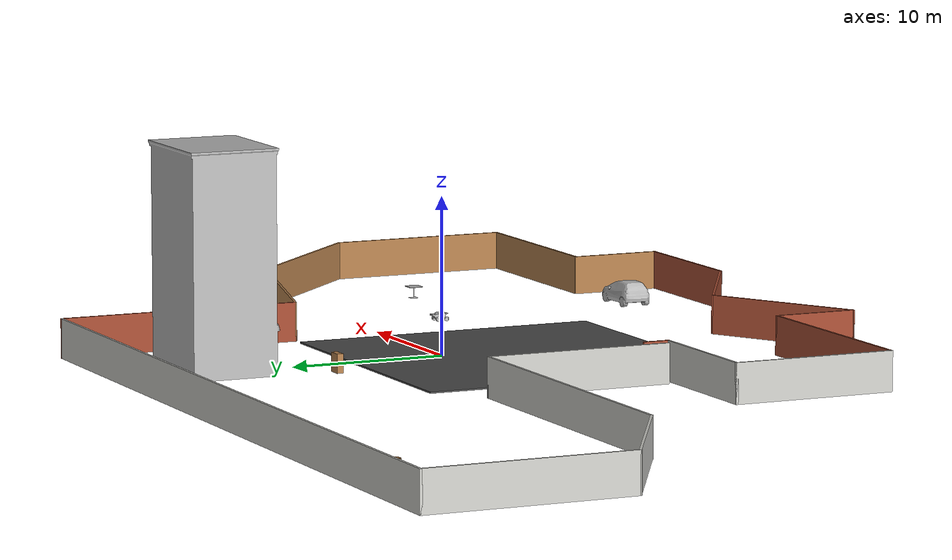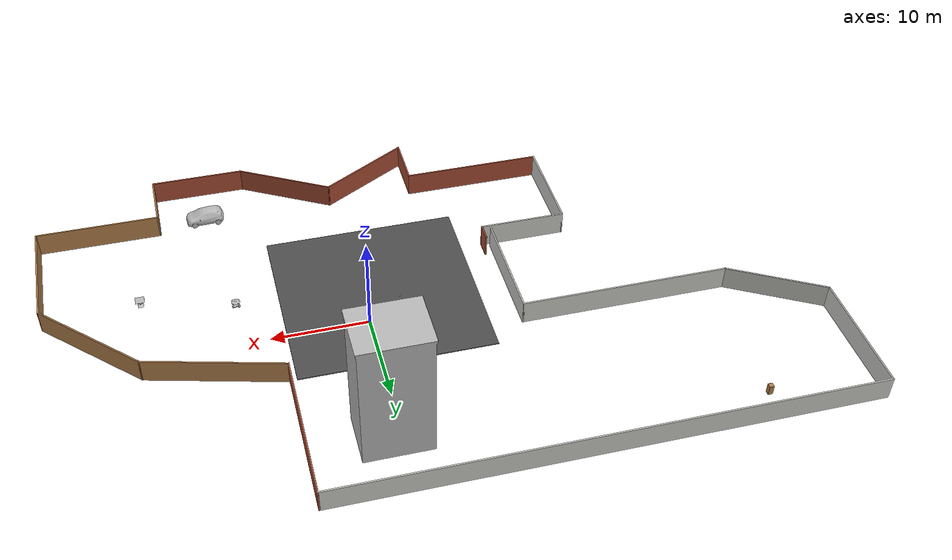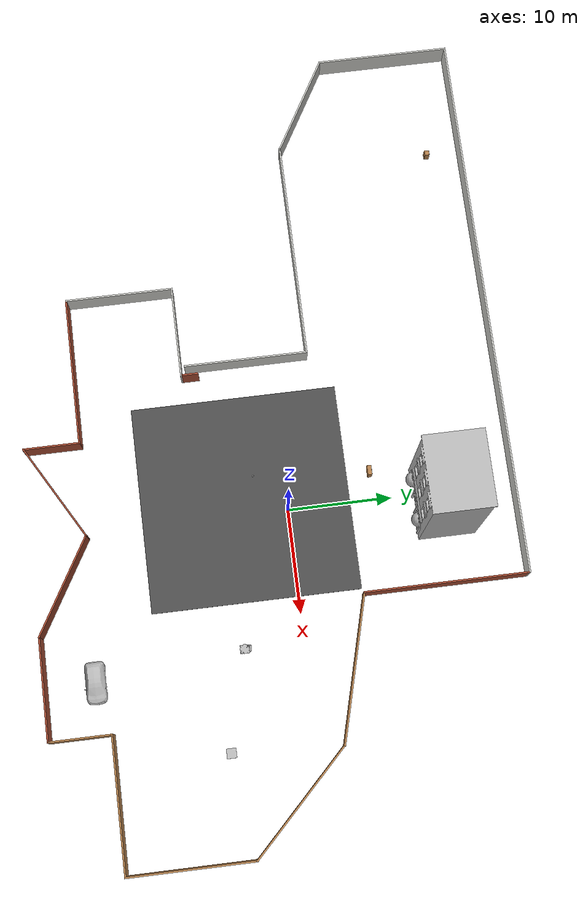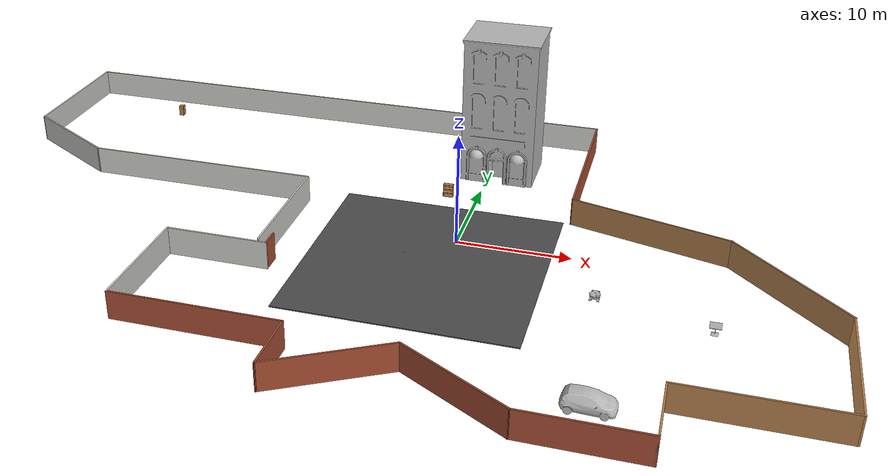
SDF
<?xml version='1.0'?>
<sdf version='1.6'>
  <model name='model1'>
    <model name='Untitled'>
      <pose frame=''>-6.69838 -1.37299 0 0 -0 0</pose>
      <link name='Wall_0'>
        <collision name='Wall_0_Collision'>
          <geometry>
            <box>
              <size>1.75 0.15 2.5</size>
            </box>
          </geometry>
          <pose frame=''>0 0 1.25 0 -0 0</pose>
        </collision>
        <visual name='Wall_0_Visual'>
          <pose frame=''>0 0 1.25 0 -0 0</pose>
          <geometry>
            <box>
              <size>1.75 0.15 2.5</size>
            </box>
          </geometry>
          <material>
            <script>
              <uri>file://media/materials/scripts/gazebo.material</uri>
              <name>Gazebo/Bricks</name>
            </script>
            <ambient>1 1 1 1</ambient>
          </material>
          <meta>
            <layer>0</layer>
          </meta>
        </visual>
        <pose frame=''>-7.2256 -6.50411 0 0 -0 -1.5708</pose>
      </link>
      <link name='Wall_1'>
        <collision name='Wall_1_Collision'>
          <geometry>
            <box>
              <size>9 0.15 2.5</size>
            </box>
          </geometry>
          <pose frame=''>0 0 1.25 0 -0 0</pose>
        </collision>
        <visual name='Wall_1_Visual'>
          <pose frame=''>0 0 1.25 0 -0 0</pose>
          <geometry>
            <box>
              <size>9 0.15 2.5</size>
            </box>
          </geometry>
          <material>
            <script>
              <uri>file://media/materials/scripts/gazebo.material</uri>
              <name>Gazebo/CeilingTiled</name>
            </script>
            <ambient>1 0.764706 0.305882 1</ambient>
          </material>
          <meta>
            <layer>0</layer>
          </meta>
        </visual>
        <pose frame=''>-11.6506 -7.30411 0 0 -0 3.14159</pose>
      </link>
      <link name='Wall_10'>
        <collision name='Wall_10_Collision'>
          <geometry>
            <box>
              <size>12 0.15 2.5</size>
            </box>
          </geometry>
          <pose frame=''>0 0 1.25 0 -0 0</pose>
        </collision>
        <visual name='Wall_10_Visual'>
          <pose frame=''>0 0 1.25 0 -0 0</pose>
          <geometry>
            <box>
              <size>12 0.15 2.5</size>
            </box>
          </geometry>
          <material>
            <script>
              <uri>file://media/materials/scripts/gazebo.material</uri>
              <name>Gazebo/Wood</name>
            </script>
            <ambient>1 1 1 1</ambient>
          </material>
          <meta>
            <layer>0</layer>
          </meta>
        </visual>
        <pose frame=''>38.4011 -11.2291 0 0 -0 1.5708</pose>
      </link>
      <link name='Wall_11'>
        <collision name='Wall_11_Collision'>
          <geometry>
            <box>
              <size>13 0.15 2.5</size>
            </box>
          </geometry>
          <pose frame=''>0 0 1.25 0 -0 0</pose>
        </collision>
        <visual name='Wall_11_Visual'>
          <pose frame=''>0 0 1.25 0 -0 0</pose>
          <geometry>
            <box>
              <size>13 0.15 2.5</size>
            </box>
          </geometry>
          <material>
            <script>
              <uri>file://media/materials/scripts/gazebo.material</uri>
              <name>Gazebo/Wood</name>
            </script>
            <ambient>1 1 1 1</ambient>
          </material>
          <meta>
            <layer>0</layer>
          </meta>
        </visual>
        <pose frame=''>33.858 -0.760948 0 0 -0 2.35619</pose>
      </link>
      <link name='Wall_12'>
        <collision name='Wall_12_Collision'>
          <geometry>
            <box>
              <size>14.25 0.15 2.5</size>
            </box>
          </geometry>
          <pose frame=''>0 0 1.25 0 -0 0</pose>
        </collision>
        <visual name='Wall_12_Visual'>
          <pose frame=''>0 0 1.25 0 -0 0</pose>
          <geometry>
            <box>
              <size>14.25 0.15 2.5</size>
            </box>
          </geometry>
          <material>
            <script>
              <uri>file://media/materials/scripts/gazebo.material</uri>
              <name>Gazebo/Wood</name>
            </script>
            <ambient>1 1 1 1</ambient>
          </material>
          <meta>
            <layer>0</layer>
          </meta>
        </visual>
        <pose frame=''>22.505 5.60689 0 0 -0 2.87979</pose>
      </link>
      <link name='Wall_13'>
        <collision name='Wall_13_Collision'>
          <geometry>
            <box>
              <size>15.75 0.15 2.5</size>
            </box>
          </geometry>
          <pose frame=''>0 0 1.25 0 -0 0</pose>
        </collision>
        <visual name='Wall_13_Visual'>
          <pose frame=''>0 0 1.25 0 -0 0</pose>
          <geometry>
            <box>
              <size>15.75 0.15 2.5</size>
            </box>
          </geometry>
          <material>
            <script>
              <uri>file://media/materials/scripts/gazebo.material</uri>
              <name>Gazebo/Bricks</name>
            </script>
            <ambient>1 1 1 1</ambient>
          </material>
          <meta>
            <layer>0</layer>
          </meta>
        </visual>
        <pose frame=''>15.6953 15.2316 0 0 -0 1.5708</pose>
      </link>
      <link name='Wall_14'>
        <collision name='Wall_14_Collision'>
          <geometry>
            <box>
              <size>54.25 0.15 2.5</size>
            </box>
          </geometry>
          <pose frame=''>0 0 1.25 0 -0 0</pose>
        </collision>
        <visual name='Wall_14_Visual'>
          <pose frame=''>0 0 1.25 0 -0 0</pose>
          <geometry>
            <box>
              <size>54.25 0.15 2.5</size>
            </box>
          </geometry>
          <material>
            <script>
              <uri>file://media/materials/scripts/gazebo.material</uri>
              <name>Gazebo/CeilingTiled</name>
            </script>
            <ambient>1 0.764706 0.305882 1</ambient>
          </material>
          <meta>
            <layer>0</layer>
          </meta>
        </visual>
        <pose frame=''>-11.3547 23.0316 0 0 -0 3.14159</pose>
      </link>
      <link name='Wall_15'>
        <collision name='Wall_15_Collision'>
          <geometry>
            <box>
              <size>13 0.15 2.5</size>
            </box>
          </geometry>
          <pose frame=''>0 0 1.25 0 -0 0</pose>
        </collision>
        <visual name='Wall_15_Visual'>
          <pose frame=''>0 0 1.25 0 -0 0</pose>
          <geometry>
            <box>
              <size>13 0.15 2.5</size>
            </box>
          </geometry>
          <material>
            <script>
              <uri>file://media/materials/scripts/gazebo.material</uri>
              <name>Gazebo/CeilingTiled</name>
            </script>
            <ambient>1 0.764706 0.305882 1</ambient>
          </material>
          <meta>
            <layer>0</layer>
          </meta>
        </visual>
        <pose frame=''>-38.4047 16.6066 0 0 -0 -1.5708</pose>
      </link>
      <link name='Wall_16'>
        <collision name='Wall_16_Collision'>
          <geometry>
            <box>
              <size>10.5 0.15 2.5</size>
            </box>
          </geometry>
          <pose frame=''>0 0 1.25 0 -0 0</pose>
        </collision>
        <visual name='Wall_16_Visual'>
          <pose frame=''>0 0 1.25 0 -0 0</pose>
          <geometry>
            <box>
              <size>10.5 0.15 2.5</size>
            </box>
          </geometry>
          <material>
            <script>
              <uri>file://media/materials/scripts/gazebo.material</uri>
              <name>Gazebo/CeilingTiled</name>
            </script>
            <ambient>1 0.764706 0.305882 1</ambient>
          </material>
          <meta>
            <layer>0</layer>
          </meta>
        </visual>
        <pose frame=''>-33.9231 7.59406 0 0 -0 -0.523599</pose>
      </link>
      <link name='Wall_17'>
        <collision name='Wall_17_Collision'>
          <geometry>
            <box>
              <size>21.5 0.15 2.5</size>
            </box>
          </geometry>
          <pose frame=''>0 0 1.25 0 -0 0</pose>
        </collision>
        <visual name='Wall_17_Visual'>
          <pose frame=''>0 0 1.25 0 -0 0</pose>
          <geometry>
            <box>
              <size>21.5 0.15 2.5</size>
            </box>
          </geometry>
          <material>
            <script>
              <uri>file://media/materials/scripts/gazebo.material</uri>
              <name>Gazebo/CeilingTiled</name>
            </script>
            <ambient>1 0.764706 0.305882 1</ambient>
          </material>
          <meta>
            <layer>0</layer>
          </meta>
        </visual>
        <pose frame=''>-18.7664 5.00656 0 0 -0 0</pose>
      </link>
      <link name='Wall_18'>
        <collision name='Wall_18_Collision'>
          <geometry>
            <box>
              <size>12 0.15 2.5</size>
            </box>
          </geometry>
          <pose frame=''>0 0 1.25 0 -0 0</pose>
        </collision>
        <visual name='Wall_18_Visual'>
          <pose frame=''>0 0 1.25 0 -0 0</pose>
          <geometry>
            <box>
              <size>12 0.15 2.5</size>
            </box>
          </geometry>
          <material>
            <script>
              <uri>file://media/materials/scripts/gazebo.material</uri>
              <name>Gazebo/CeilingTiled</name>
            </script>
            <ambient>1 0.764706 0.305882 1</ambient>
          </material>
          <meta>
            <layer>0</layer>
          </meta>
        </visual>
        <pose frame=''>-8.09139 -0.918439 0 0 -0 -1.5708</pose>
      </link>
      <link name='Wall_2'>
        <collision name='Wall_2_Collision'>
          <geometry>
            <box>
              <size>10.5 0.15 2.5</size>
            </box>
          </geometry>
          <pose frame=''>0 0 1.25 0 -0 0</pose>
        </collision>
        <visual name='Wall_2_Visual'>
          <pose frame=''>0 0 1.25 0 -0 0</pose>
          <geometry>
            <box>
              <size>10.5 0.15 2.5</size>
            </box>
          </geometry>
          <material>
            <script>
              <uri>file://media/materials/scripts/gazebo.material</uri>
              <name>Gazebo/CeilingTiled</name>
            </script>
            <ambient>1 0.764706 0.305882 1</ambient>
          </material>
          <meta>
            <layer>0</layer>
          </meta>
        </visual>
        <pose frame=''>-16.0756 -12.4791 0 0 -0 -1.5708</pose>
      </link>
      <link name='Wall_3'>
        <collision name='Wall_3_Collision'>
          <geometry>
            <box>
              <size>14.5 0.15 2.5</size>
            </box>
          </geometry>
          <pose frame=''>0 0 1.25 0 -0 0</pose>
        </collision>
        <visual name='Wall_3_Visual'>
          <pose frame=''>0 0 1.25 0 -0 0</pose>
          <geometry>
            <box>
              <size>14.5 0.15 2.5</size>
            </box>
          </geometry>
          <material>
            <script>
              <uri>file://media/materials/scripts/gazebo.material</uri>
              <name>Gazebo/Bricks</name>
            </script>
            <ambient>1 1 1 1</ambient>
          </material>
          <meta>
            <layer>0</layer>
          </meta>
        </visual>
        <pose frame=''>-8.9006 -17.6541 0 0 -0 0</pose>
      </link>
      <link name='Wall_4'>
        <collision name='Wall_4_Collision'>
          <geometry>
            <box>
              <size>5.5 0.15 2.5</size>
            </box>
          </geometry>
          <pose frame=''>0 0 1.25 0 -0 0</pose>
        </collision>
        <visual name='Wall_4_Visual'>
          <pose frame=''>0 0 1.25 0 -0 0</pose>
          <geometry>
            <box>
              <size>5.5 0.15 2.5</size>
            </box>
          </geometry>
          <material>
            <script>
              <uri>file://media/materials/scripts/gazebo.material</uri>
              <name>Gazebo/Bricks</name>
            </script>
            <ambient>1 1 1 1</ambient>
          </material>
          <meta>
            <layer>0</layer>
          </meta>
        </visual>
        <pose frame=''>-1.7256 -20.3291 0 0 -0 -1.5708</pose>
      </link>
      <link name='Wall_5'>
        <collision name='Wall_5_Collision'>
          <geometry>
            <box>
              <size>10.5 0.15 2.5</size>
            </box>
          </geometry>
          <pose frame=''>0 0 1.25 0 -0 0</pose>
        </collision>
        <visual name='Wall_5_Visual'>
          <pose frame=''>0 0 1.25 0 -0 0</pose>
          <geometry>
            <box>
              <size>10.5 0.15 2.5</size>
            </box>
          </geometry>
          <material>
            <script>
              <uri>file://media/materials/scripts/gazebo.material</uri>
              <name>Gazebo/Bricks</name>
            </script>
            <ambient>1 1 1 1</ambient>
          </material>
          <meta>
            <layer>0</layer>
          </meta>
        </visual>
        <pose frame=''>2.75608 -20.4166 0 0 -0 0.523599</pose>
      </link>
      <link name='Wall_6'>
        <collision name='Wall_6_Collision'>
          <geometry>
            <box>
              <size>10.5 0.15 2.5</size>
            </box>
          </geometry>
          <pose frame=''>0 0 1.25 0 -0 0</pose>
        </collision>
        <visual name='Wall_6_Visual'>
          <pose frame=''>0 0 1.25 0 -0 0</pose>
          <geometry>
            <box>
              <size>10.5 0.15 2.5</size>
            </box>
          </geometry>
          <material>
            <script>
              <uri>file://media/materials/scripts/gazebo.material</uri>
              <name>Gazebo/Bricks</name>
            </script>
            <ambient>1 1 1 1</ambient>
          </material>
          <meta>
            <layer>0</layer>
          </meta>
        </visual>
        <pose frame=''>11.7194 -20.4166 0 0 -0 -0.523599</pose>
      </link>
      <link name='Wall_7'>
        <collision name='Wall_7_Collision'>
          <geometry>
            <box>
              <size>9.75 0.15 2.5</size>
            </box>
          </geometry>
          <pose frame=''>0 0 1.25 0 -0 0</pose>
        </collision>
        <visual name='Wall_7_Visual'>
          <pose frame=''>0 0 1.25 0 -0 0</pose>
          <geometry>
            <box>
              <size>9.75 0.15 2.5</size>
            </box>
          </geometry>
          <material>
            <script>
              <uri>file://media/materials/scripts/gazebo.material</uri>
              <name>Gazebo/Bricks</name>
            </script>
            <ambient>1 0.764706 0.305882 1</ambient>
          </material>
          <meta>
            <layer>0</layer>
          </meta>
        </visual>
        <pose frame=''>21.0011 -23.0041 0 0 -0 0</pose>
      </link>
      <link name='Wall_8'>
        <collision name='Wall_8_Collision'>
          <geometry>
            <box>
              <size>6 0.15 2.5</size>
            </box>
          </geometry>
          <pose frame=''>0 0 1.25 0 -0 0</pose>
        </collision>
        <visual name='Wall_8_Visual'>
          <pose frame=''>0 0 1.25 0 -0 0</pose>
          <geometry>
            <box>
              <size>6 0.15 2.5</size>
            </box>
          </geometry>
          <material>
            <script>
              <uri>file://media/materials/scripts/gazebo.material</uri>
              <name>Gazebo/Wood</name>
            </script>
            <ambient>1 0.764706 0.305882 1</ambient>
          </material>
          <meta>
            <layer>0</layer>
          </meta>
        </visual>
        <pose frame=''>25.8011 -20.0791 0 0 -0 1.5708</pose>
      </link>
      <link name='Wall_9'>
        <collision name='Wall_9_Collision'>
          <geometry>
            <box>
              <size>12.75 0.15 2.5</size>
            </box>
          </geometry>
          <pose frame=''>0 0 1.25 0 -0 0</pose>
        </collision>
        <visual name='Wall_9_Visual'>
          <pose frame=''>0 0 1.25 0 -0 0</pose>
          <geometry>
            <box>
              <size>12.75 0.15 2.5</size>
            </box>
          </geometry>
          <material>
            <script>
              <uri>file://media/materials/scripts/gazebo.material</uri>
              <name>Gazebo/Wood</name>
            </script>
            <ambient>1 1 1 1</ambient>
          </material>
          <meta>
            <layer>0</layer>
          </meta>
        </visual>
        <pose frame=''>32.1011 -17.1541 0 0 -0 0</pose>
      </link>
      <static>1</static>
    </model>
    <model name='asphalt_plane'>
      <static>1</static>
      <link name='link'>
        <collision name='collision'>
          <geometry>
            <box>
              <size>20 20 0.1</size>
            </box>
          </geometry>
        </collision>
        <visual name='visual'>
          <cast_shadows>0</cast_shadows>
          <geometry>
            <box>
              <size>20 20 0.1</size>
            </box>
          </geometry>
          <material>
            <script>
              <uri>model://asphalt_plane/materials/scripts</uri>
              <uri>model://asphalt_plane/materials/textures</uri>
              <name>vrc/asphalt</name>
            </script>
          </material>
        </visual>
      </link>
      <pose frame=''>-1.657 -3.98212 0 0 -0 0</pose>
    </model>
    <model name='bookshelf'>
      <static>1</static>
      <link name='link'>
        <inertial>
          <mass>1</mass>
        </inertial>
        <collision name='back'>
          <pose frame=''>0 0.005 0.6 0 -0 0</pose>
          <geometry>
            <box>
              <size>0.9 0.01 1.2</size>
            </box>
          </geometry>
        </collision>
        <visual name='visual1'>
          <pose frame=''>0 0.005 0.6 0 -0 0</pose>
          <geometry>
            <box>
              <size>0.9 0.01 1.2</size>
            </box>
          </geometry>
          <material>
            <script>
              <uri>file://media/materials/scripts/gazebo.material</uri>
              <name>Gazebo/Wood</name>
            </script>
          </material>
        </visual>
        <collision name='left_side'>
          <pose frame=''>0.45 -0.195 0.6 0 -0 0</pose>
          <geometry>
            <box>
              <size>0.02 0.4 1.2</size>
            </box>
          </geometry>
        </collision>
        <visual name='visual2'>
          <pose frame=''>0.45 -0.195 0.6 0 -0 0</pose>
          <geometry>
            <box>
              <size>0.02 0.4 1.2</size>
            </box>
          </geometry>
          <material>
            <script>
              <uri>file://media/materials/scripts/gazebo.material</uri>
              <name>Gazebo/Wood</name>
            </script>
          </material>
        </visual>
        <collision name='right_side'>
          <pose frame=''>-0.45 -0.195 0.6 0 -0 0</pose>
          <geometry>
            <box>
              <size>0.02 0.4 1.2</size>
            </box>
          </geometry>
        </collision>
        <visual name='visual3'>
          <pose frame=''>-0.45 -0.195 0.6 0 -0 0</pose>
          <geometry>
            <box>
              <size>0.02 0.4 1.2</size>
            </box>
          </geometry>
          <material>
            <script>
              <uri>file://media/materials/scripts/gazebo.material</uri>
              <name>Gazebo/Wood</name>
            </script>
          </material>
        </visual>
        <collision name='bottom'>
          <pose frame=''>0 -0.195 0.03 0 -0 0</pose>
          <geometry>
            <box>
              <size>0.88 0.4 0.06</size>
            </box>
          </geometry>
        </collision>
        <visual name='visual4'>
          <pose frame=''>0 -0.195 0.03 0 -0 0</pose>
          <geometry>
            <box>
              <size>0.88 0.4 0.06</size>
            </box>
          </geometry>
          <material>
            <script>
              <uri>file://media/materials/scripts/gazebo.material</uri>
              <name>Gazebo/Wood</name>
            </script>
          </material>
        </visual>
        <collision name='top'>
          <pose frame=''>0 -0.195 1.19 0 -0 0</pose>
          <geometry>
            <box>
              <size>0.88 0.4 0.02</size>
            </box>
          </geometry>
        </collision>
        <visual name='visual5'>
          <pose frame=''>0 -0.195 1.19 0 -0 0</pose>
          <geometry>
            <box>
              <size>0.88 0.4 0.02</size>
            </box>
          </geometry>
          <material>
            <script>
              <uri>file://media/materials/scripts/gazebo.material</uri>
              <name>Gazebo/Wood</name>
            </script>
          </material>
        </visual>
        <collision name='low_shelf'>
          <pose frame=''>0 -0.195 0.43 0 -0 0</pose>
          <geometry>
            <box>
              <size>0.88 0.4 0.02</size>
            </box>
          </geometry>
        </collision>
        <visual name='visual6'>
          <pose frame=''>0 -0.195 0.43 0 -0 0</pose>
          <geometry>
            <box>
              <size>0.88 0.4 0.02</size>
            </box>
          </geometry>
          <material>
            <script>
              <uri>file://media/materials/scripts/gazebo.material</uri>
              <name>Gazebo/Wood</name>
            </script>
          </material>
        </visual>
        <collision name='high_shelf'>
          <pose frame=''>0 -0.195 0.8 0 -0 0</pose>
          <geometry>
            <box>
              <size>0.88 0.4 0.02</size>
            </box>
          </geometry>
        </collision>
        <visual name='visual7'>
          <pose frame=''>0 -0.195 0.8 0 -0 0</pose>
          <geometry>
            <box>
              <size>0.88 0.4 0.02</size>
            </box>
          </geometry>
          <material>
            <script>
              <uri>file://media/materials/scripts/gazebo.material</uri>
              <name>Gazebo/Wood</name>
            </script>
          </material>
        </visual>
      </link>
      <pose frame=''>-2.7321 8.40925 0 0 -0 0</pose>
    </model>
    <model name='cabinet'>
      <static>1</static>
      <link name='cabinet_bottom_plate'>
        <inertial>
          <pose frame=''>0 0 -1 0 -0 0</pose>
          <inertia>
            <ixx>2.05</ixx>
            <ixy>0</ixy>
            <ixz>0</ixz>
            <iyy>2.05</iyy>
            <iyz>0</iyz>
            <izz>2.05</izz>
          </inertia>
          <mass>25</mass>
        </inertial>
        <collision name='cabinet_bottom_plate_geom'>
          <pose frame=''>0 0 0.01 0 -0 0</pose>
          <geometry>
            <box>
              <size>0.45 0.45 0.02</size>
            </box>
          </geometry>
        </collision>
        <visual name='cabinet_bottom_plate_geom_visual'>
          <pose frame=''>0 0 0.01 0 -0 0</pose>
          <geometry>
            <box>
              <size>0.45 0.45 0.02</size>
            </box>
          </geometry>
          <material>
            <script>
              <uri>file://media/materials/scripts/gazebo.material</uri>
              <name>Gazebo/Wood</name>
            </script>
          </material>
        </visual>
        <collision name='cabinet_bottom_plate_geom_cabinet_back_plate'>
          <pose frame=''>0.235 0 0.51 0 -0 0</pose>
          <geometry>
            <box>
              <size>0.02 0.45 1.02</size>
            </box>
          </geometry>
        </collision>
        <visual name='cabinet_bottom_plate_geom_cabinet_back_plate_visual'>
          <pose frame=''>0.235 0 0.51 0 -0 0</pose>
          <geometry>
            <box>
              <size>0.02 0.45 1.02</size>
            </box>
          </geometry>
          <material>
            <script>
              <uri>file://media/materials/scripts/gazebo.material</uri>
              <name>Gazebo/Wood</name>
            </script>
          </material>
        </visual>
        <collision name='cabinet_bottom_plate_geom_cabinet_left_plate'>
          <pose frame=''>0 0.235 0.51 0 -0 0</pose>
          <geometry>
            <box>
              <size>0.45 0.02 1.02</size>
            </box>
          </geometry>
        </collision>
        <visual name='cabinet_bottom_plate_geom_cabinet_left_plate_visual'>
          <pose frame=''>0 0.235 0.51 0 -0 0</pose>
          <geometry>
            <box>
              <size>0.45 0.02 1.02</size>
            </box>
          </geometry>
          <material>
            <script>
              <uri>file://media/materials/scripts/gazebo.material</uri>
              <name>Gazebo/Wood</name>
            </script>
          </material>
        </visual>
        <collision name='cabinet_bottom_plate_geom_cabinet_middle_plate'>
          <pose frame=''>0 0 0.51 0 -0 0</pose>
          <geometry>
            <box>
              <size>0.45 0.45 0.02</size>
            </box>
          </geometry>
        </collision>
        <visual name='cabinet_bottom_plate_geom_cabinet_middle_plate_visual'>
          <pose frame=''>0 0 0.51 0 -0 0</pose>
          <geometry>
            <box>
              <size>0.45 0.45 0.02</size>
            </box>
          </geometry>
          <material>
            <script>
              <uri>file://media/materials/scripts/gazebo.material</uri>
              <name>Gazebo/Wood</name>
            </script>
          </material>
        </visual>
        <collision name='cabinet_bottom_plate_geom_cabinet_right_plate'>
          <pose frame=''>0 -0.235 0.51 0 -0 0</pose>
          <geometry>
            <box>
              <size>0.45 0.02 1.02</size>
            </box>
          </geometry>
        </collision>
        <visual name='cabinet_bottom_plate_geom_cabinet_right_plate_visual'>
          <pose frame=''>0 -0.235 0.51 0 -0 0</pose>
          <geometry>
            <box>
              <size>0.45 0.02 1.02</size>
            </box>
          </geometry>
          <material>
            <script>
              <uri>file://media/materials/scripts/gazebo.material</uri>
              <name>Gazebo/Wood</name>
            </script>
          </material>
        </visual>
        <collision name='cabinet_bottom_plate_geom_cabinet_top_plate'>
          <pose frame=''>0 0 1.01 0 -0 0</pose>
          <geometry>
            <box>
              <size>0.45 0.45 0.02</size>
            </box>
          </geometry>
        </collision>
        <visual name='cabinet_bottom_plate_geom_cabinet_top_plate_visual'>
          <pose frame=''>0 0 1.01 0 -0 0</pose>
          <geometry>
            <box>
              <size>0.45 0.45 0.02</size>
            </box>
          </geometry>
          <material>
            <script>
              <uri>file://media/materials/scripts/gazebo.material</uri>
              <name>Gazebo/Wood</name>
            </script>
          </material>
        </visual>
      </link>
      <pose frame=''>-34.6067 18.4549 0 0 -0 0</pose>
    </model>
    <model name='cafe_table'>
      <static>1</static>
      <link name='link'>
        <collision name='surface'>
          <pose frame=''>0 0 0.755 0 -0 0</pose>
          <geometry>
            <box>
              <size>0.913 0.913 0.04</size>
            </box>
          </geometry>
        </collision>
        <collision name='column'>
          <pose frame=''>0 0 0.37 0 -0 0</pose>
          <geometry>
            <box>
              <size>0.042 0.042 0.74</size>
            </box>
          </geometry>
        </collision>
        <collision name='base'>
          <pose frame=''>0 0 0.02 0 -0 0</pose>
          <geometry>
            <box>
              <size>0.56 0.56 0.04</size>
            </box>
          </geometry>
        </collision>
        <visual name='visual'>
          <geometry>
            <mesh>
              <uri>model://cafe_table/meshes/cafe_table.dae</uri>
            </mesh>
          </geometry>
        </visual>
      </link>
      <pose frame=''>22.0309 -7.94622 0 0 -0 0</pose>
    </model>
    <model name='hatchback_red'>
      <static>1</static>
      <link name='link'>
        <collision name='collision'>
          <pose frame=''>0 0 0 0 -0 1.5708</pose>
          <geometry>
            <mesh>
              <scale>0.0254 0.0254 0.0254</scale>
              <uri>model://hatchback_red/meshes/hatchback.obj</uri>
            </mesh>
          </geometry>
        </collision>
        <visual name='visual'>
          <pose frame=''>0 0 0 0 -0 1.5708</pose>
          <geometry>
            <mesh>
              <scale>0.0254 0.0254 0.0254</scale>
              <uri>model://hatchback_red/meshes/hatchback.obj</uri>
            </mesh>
          </geometry>
        </visual>
      </link>
      <pose frame=''>13.8173 -19.7571 0 0 -0 0</pose>
    </model>
    <model name='law_office'>
      <static>1</static>
      <link name='link'>
        <collision name='collision'>
          <pose frame=''>0 0 6.96244 0 -0 0</pose>
          <geometry>
            <box>
              <size>6.84401 5.43165 13.9249</size>
            </box>
          </geometry>
        </collision>
        <visual name='visual'>
          <geometry>
            <mesh>
              <uri>model://law_office/meshes/law_office.dae</uri>
            </mesh>
          </geometry>
        </visual>
      </link>
      <pose frame=''>0.909365 14.7617 0 0 -0 0</pose>
    </model>
    <model name='mars_rover'>
      <static>1</static>
      <link name='link'>
        <collision name='solar_panel_collision'>
          <pose frame=''>0 -0.06945 0.47293 0 -0 0</pose>
          <geometry>
            <box>
              <size>0.87974 0.8821 0.02602</size>
            </box>
          </geometry>
        </collision>
        <collision name='chassis_collision'>
          <pose frame=''>0 -0.05 0.31475 0 -0 0</pose>
          <geometry>
            <box>
              <size>0.49522 0.67401 0.28915</size>
            </box>
          </geometry>
        </collision>
        <collision name='rear_left_bumper_collision'>
          <pose frame=''>0.30107 0.3835 0.38976 0 -0 0</pose>
          <geometry>
            <box>
              <size>0.04442 0.38897 0.07918</size>
            </box>
          </geometry>
        </collision>
        <collision name='rear_right_bumper_collision'>
          <pose frame=''>-0.30107 0.3835 0.38976 0 -0 0</pose>
          <geometry>
            <box>
              <size>0.04442 0.38897 0.07918</size>
            </box>
          </geometry>
        </collision>
        <collision name='rear_bumper_collision'>
          <pose frame=''>0 0.59414 0.38976 0 -0 0</pose>
          <geometry>
            <box>
              <size>0.56656 0.04442 0.07918</size>
            </box>
          </geometry>
        </collision>
        <collision name='bin_back_panel_collision'>
          <pose frame=''>0 0.47 0.32114 0.69137 -0 0</pose>
          <geometry>
            <box>
              <size>0.43774 0.212366 0.05173</size>
            </box>
          </geometry>
        </collision>
        <collision name='bin_left_panel_collision1'>
          <pose frame=''>0.22615 0.32897 0.33193 0 -0 0</pose>
          <geometry>
            <box>
              <size>0.01116 0.19338 0.16304</size>
            </box>
          </geometry>
        </collision>
        <collision name='bin_left_panel_collision2'>
          <pose frame=''>0.22615 0.471 0.39308 0 -0 0</pose>
          <geometry>
            <box>
              <size>0.01116 0.15 0.04</size>
            </box>
          </geometry>
        </collision>
        <collision name='bin_left_panel_collision3'>
          <pose frame=''>0.22615 0.45 0.35308 0 -0 0</pose>
          <geometry>
            <box>
              <size>0.01116 0.15 0.04</size>
            </box>
          </geometry>
        </collision>
        <collision name='bin_left_panel_collision4'>
          <pose frame=''>0.22615 0.39308 0.31308 0 -0 0</pose>
          <geometry>
            <box>
              <size>0.01116 0.15 0.04</size>
            </box>
          </geometry>
        </collision>
        <collision name='bin_right_panel_collision1'>
          <pose frame=''>-0.22615 0.32897 0.33193 0 -0 0</pose>
          <geometry>
            <box>
              <size>0.01116 0.19338 0.16304</size>
            </box>
          </geometry>
        </collision>
        <collision name='bin_right_panel_collision2'>
          <pose frame=''>-0.22615 0.471 0.39308 0 -0 0</pose>
          <geometry>
            <box>
              <size>0.01116 0.15 0.04</size>
            </box>
          </geometry>
        </collision>
        <collision name='bin_right_panel_collision3'>
          <pose frame=''>-0.22615 0.45 0.35308 0 -0 0</pose>
          <geometry>
            <box>
              <size>0.01116 0.15 0.04</size>
            </box>
          </geometry>
        </collision>
        <collision name='bin_right_panel_collision4'>
          <pose frame=''>-0.22615 0.39308 0.31308 0 -0 0</pose>
          <geometry>
            <box>
              <size>0.01116 0.15 0.04</size>
            </box>
          </geometry>
        </collision>
        <collision name='bin_front_panel_collision'>
          <pose frame=''>0 0.30047 0.32114 2.26207 -0 0</pose>
          <geometry>
            <box>
              <size>0.43774 0.212366 0.05173</size>
            </box>
          </geometry>
        </collision>
        <collision name='front_left_wheel_collision'>
          <pose frame=''>0.31103 -0.32115 0.1358 1.5707 0 1.5707</pose>
          <geometry>
            <cylinder>
              <radius>0.1358</radius>
              <length>0.1641</length>
            </cylinder>
          </geometry>
        </collision>
        <collision name='front_right_wheel_collision'>
          <pose frame=''>-0.31103 -0.32115 0.1358 1.5707 0 1.5707</pose>
          <geometry>
            <cylinder>
              <radius>0.1358</radius>
              <length>0.1641</length>
            </cylinder>
          </geometry>
        </collision>
        <collision name='rear_left_wheel_collision'>
          <pose frame=''>0.31103 0.28049 0.1358 1.5707 0 1.5707</pose>
          <geometry>
            <cylinder>
              <radius>0.1358</radius>
              <length>0.1641</length>
            </cylinder>
          </geometry>
        </collision>
        <collision name='rear_right_wheel_collision'>
          <pose frame=''>-0.31103 0.28049 0.1358 1.5707 0 1.5707</pose>
          <geometry>
            <cylinder>
              <radius>0.1358</radius>
              <length>0.1641</length>
            </cylinder>
          </geometry>
        </collision>
        <visual name='visual'>
          <geometry>
            <mesh>
              <uri>model://mars_rover/meshes/rover.dae</uri>
            </mesh>
          </geometry>
        </visual>
      </link>
      <pose frame=''>12.6714 -5.62521 0 0 -0 0</pose>
    </model>
    <model name='white_ball'>
      <link name='link_0'>
        <inertial>
          <mass>1</mass>
          <inertia>
            <ixx>0.1</ixx>
            <ixy>0</ixy>
            <ixz>0</ixz>
            <iyy>0.1</iyy>
            <iyz>0</iyz>
            <izz>0.1</izz>
          </inertia>
          <pose frame=''>0 0 0 0 -0 0</pose>
        </inertial>
        <pose frame=''>-0 -0 0 0 -0 0</pose>
        <gravity>1</gravity>
        <self_collide>0</self_collide>
        <kinematic>0</kinematic>
        <enable_wind>0</enable_wind>
        <visual name='visual'>
          <pose frame=''>0 0 0 0 -0 0</pose>
          <geometry>
            <sphere>
              <radius>0.1</radius>
            </sphere>
          </geometry>
          <material>
            <lighting>1</lighting>
            <script>
              <uri>file://media/materials/scripts/gazebo.material</uri>
              <name>Gazebo/Grey</name>
            </script>
            <shader type='pixel'>
              <normal_map>__default__</normal_map>
            </shader>
            <ambient>1 1 1 1</ambient>
            <diffuse>1 1 1 1</diffuse>
            <specular>1 1 1 1</specular>
            <emissive>1 1 1 1</emissive>
          </material>
          <transparency>0</transparency>
          <cast_shadows>1</cast_shadows>
        </visual>
        <collision name='collision'>
          <laser_retro>0</laser_retro>
          <max_contacts>10</max_contacts>
          <pose frame=''>0 0 0 0 -0 0</pose>
          <geometry>
            <sphere>
              <radius>0.1</radius>
            </sphere>
          </geometry>
          <surface>
            <friction>
              <ode>
                <mu>1</mu>
                <mu2>1</mu2>
                <fdir1>0 0 0</fdir1>
                <slip1>0</slip1>
                <slip2>0</slip2>
              </ode>
              <torsional>
                <coefficient>1</coefficient>
                <patch_radius>0</patch_radius>
                <surface_radius>0</surface_radius>
                <use_patch_radius>1</use_patch_radius>
                <ode>
                  <slip>0</slip>
                </ode>
              </torsional>
            </friction>
            <bounce>
              <restitution_coefficient>0</restitution_coefficient>
              <threshold>1e+06</threshold>
            </bounce>
            <contact>
              <collide_without_contact>0</collide_without_contact>
              <collide_without_contact_bitmask>1</collide_without_contact_bitmask>
              <collide_bitmask>1</collide_bitmask>
              <ode>
                <soft_cfm>0</soft_cfm>
                <soft_erp>0.2</soft_erp>
                <kp>1e+13</kp>
                <kd>1</kd>
                <max_vel>0.01</max_vel>
                <min_depth>0</min_depth>
              </ode>
              <bullet>
                <split_impulse>1</split_impulse>
                <split_impulse_penetration_threshold>-0.01</split_impulse_penetration_threshold>
                <soft_cfm>0</soft_cfm>
                <soft_erp>0.2</soft_erp>
                <kp>1e+13</kp>
                <kd>1</kd>
              </bullet>
            </contact>
          </surface>
        </collision>
      </link>
      <static>0</static>
      <allow_auto_disable>1</allow_auto_disable>
      <pose frame=''>-3.73473 -2.94213 0 0 -0 0</pose>
    </model>
    <static>0</static>
    <allow_auto_disable>1</allow_auto_disable>
  </model>
</sdf>
